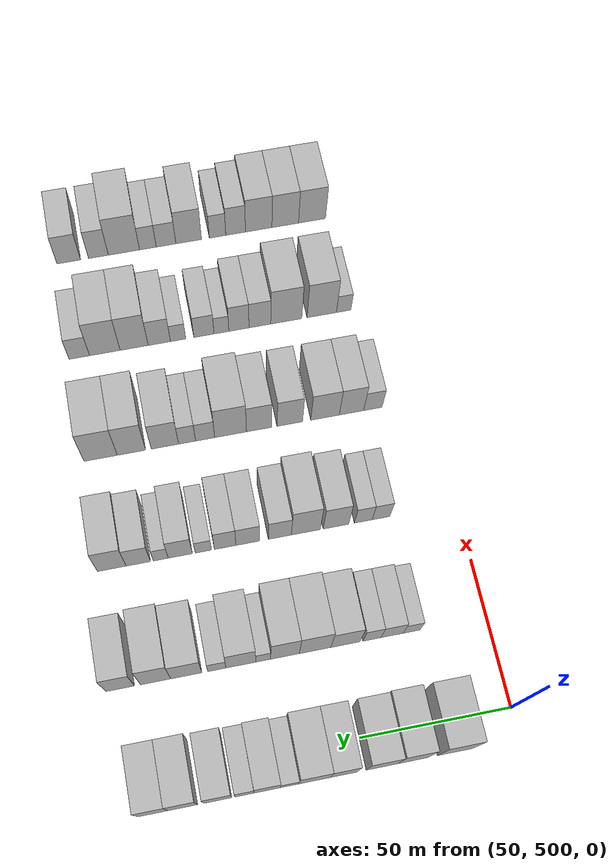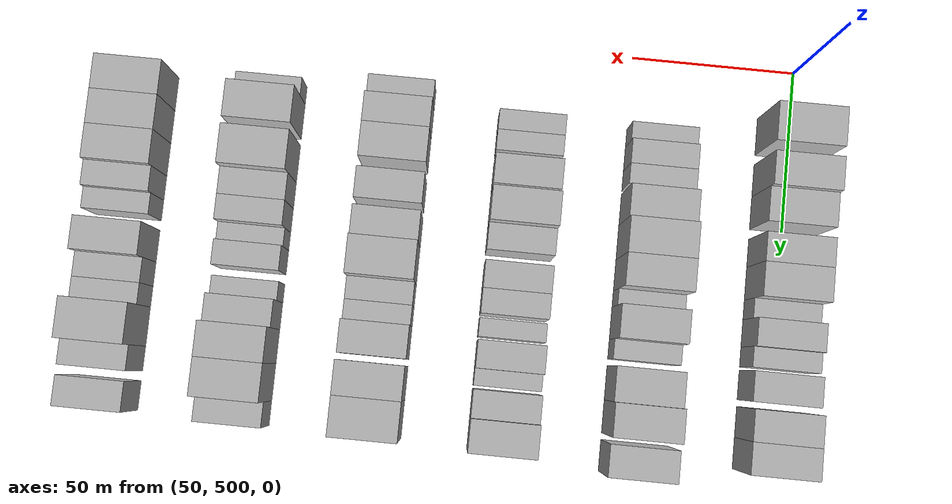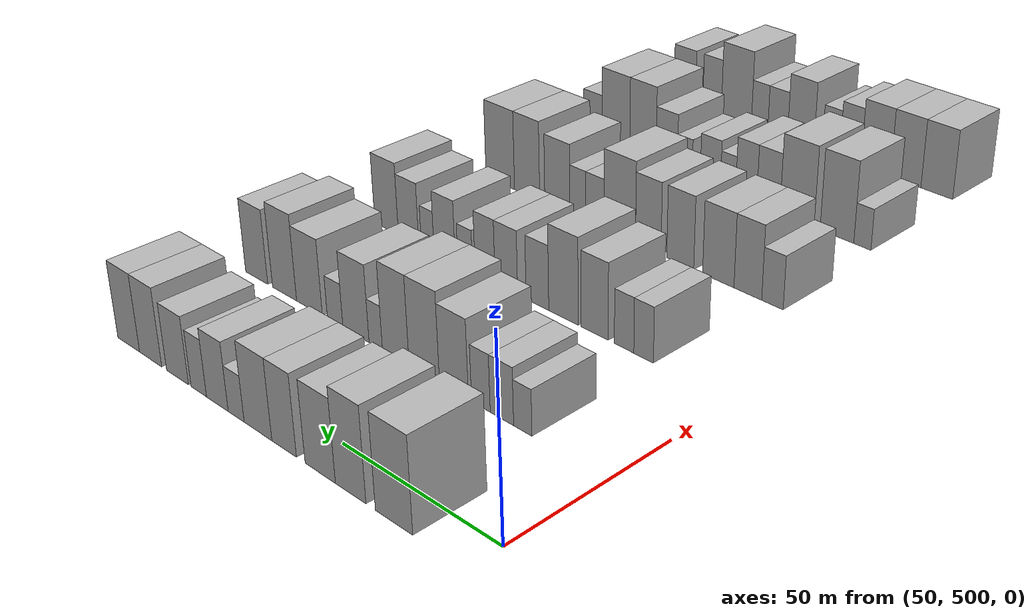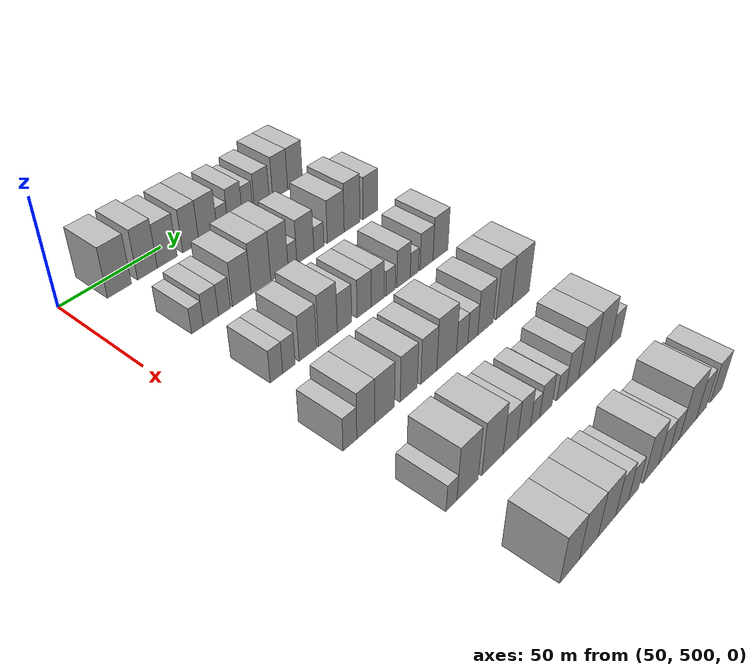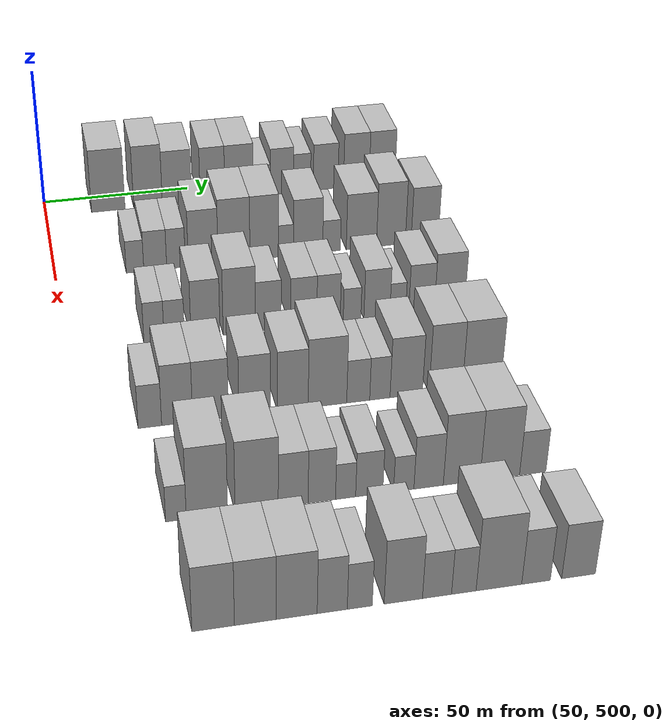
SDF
<sdf version="1.6">
 <world name="default">
  <model name="building_129">
   <static>1</static>
   <pose>50.0000 521.2036 0 0.000000 0.000000 0.000000</pose>
   <link name="link">
    <pose>0 0 12.00 0 0 0</pose>
    <collision name="collision"><geometry><box><size>20.0000 11.5672 24.0000</size></box></geometry></collision>
    <visual name="visual">
     <cast_shadows>0</cast_shadows>
     <geometry><box><size>20.0000 11.5672 24.0000</size></box></geometry>
     <material>
      <script>
       <uri>model://HANNAS_wall/materials/scripts</uri>
       <uri>model://HANNAS_wall/materials/textures</uri>
       <name>vrc/HANNAS_wall</name>
      </script>
     </material>
    </visual>
   </link>
  </model>
  <model name="building_130">
   <static>1</static>
   <pose>50.0000 534.9674 0 0.000000 0.000000 0.000000</pose>
   <link name="link">
    <pose>0 0 12.00 0 0 0</pose>
    <collision name="collision"><geometry><box><size>20.0000 9.9604 24.0000</size></box></geometry></collision>
    <visual name="visual">
     <cast_shadows>0</cast_shadows>
     <geometry><box><size>20.0000 9.9604 24.0000</size></box></geometry>
     <material>
      <script>
       <uri>model://HANNAS_wall/materials/scripts</uri>
       <uri>model://HANNAS_wall/materials/textures</uri>
       <name>vrc/HANNAS_wall</name>
      </script>
     </material>
    </visual>
   </link>
  </model>
  <model name="building_131">
   <static>1</static>
   <pose>50.0000 545.0641 0 0.000000 0.000000 0.000000</pose>
   <link name="link">
    <pose>0 0 10.50 0 0 0</pose>
    <collision name="collision"><geometry><box><size>20.0000 10.2331 21.0000</size></box></geometry></collision>
    <visual name="visual">
     <cast_shadows>0</cast_shadows>
     <geometry><box><size>20.0000 10.2331 21.0000</size></box></geometry>
     <material>
      <script>
       <uri>model://HANNAS_wall/materials/scripts</uri>
       <uri>model://HANNAS_wall/materials/textures</uri>
       <name>vrc/HANNAS_wall</name>
      </script>
     </material>
    </visual>
   </link>
  </model>
  <model name="building_132">
   <static>1</static>
   <pose>50.0000 557.5174 0 0.000000 0.000000 0.000000</pose>
   <link name="link">
    <pose>0 0 10.50 0 0 0</pose>
    <collision name="collision"><geometry><box><size>20.0000 8.6735 21.0000</size></box></geometry></collision>
    <visual name="visual">
     <cast_shadows>0</cast_shadows>
     <geometry><box><size>20.0000 8.6735 21.0000</size></box></geometry>
     <material>
      <script>
       <uri>model://HANNAS_wall/materials/scripts</uri>
       <uri>model://HANNAS_wall/materials/textures</uri>
       <name>vrc/HANNAS_wall</name>
      </script>
     </material>
    </visual>
   </link>
  </model>
  <model name="building_133">
   <static>1</static>
   <pose>50.0000 566.9060 0 0.000000 0.000000 0.000000</pose>
   <link name="link">
    <pose>0 0 10.50 0 0 0</pose>
    <collision name="collision"><geometry><box><size>20.0000 10.1039 21.0000</size></box></geometry></collision>
    <visual name="visual">
     <cast_shadows>0</cast_shadows>
     <geometry><box><size>20.0000 10.1039 21.0000</size></box></geometry>
     <material>
      <script>
       <uri>model://HANNAS_wall/materials/scripts</uri>
       <uri>model://HANNAS_wall/materials/textures</uri>
       <name>vrc/HANNAS_wall</name>
      </script>
     </material>
    </visual>
   </link>
  </model>
  <model name="building_134">
   <static>1</static>
   <pose>50.0000 574.9451 0 0.000000 0.000000 0.000000</pose>
   <link name="link">
    <pose>0 0 6.00 0 0 0</pose>
    <collision name="collision"><geometry><box><size>20.0000 5.9743 12.0000</size></box></geometry></collision>
    <visual name="visual">
     <cast_shadows>0</cast_shadows>
     <geometry><box><size>20.0000 5.9743 12.0000</size></box></geometry>
     <material>
      <script>
       <uri>model://HANNAS_wall/materials/scripts</uri>
       <uri>model://HANNAS_wall/materials/textures</uri>
       <name>vrc/HANNAS_wall</name>
      </script>
     </material>
    </visual>
   </link>
  </model>
  <model name="building_135">
   <static>1</static>
   <pose>50.0000 582.1057 0 0.000000 0.000000 0.000000</pose>
   <link name="link">
    <pose>0 0 9.00 0 0 0</pose>
    <collision name="collision"><geometry><box><size>20.0000 8.3469 18.0000</size></box></geometry></collision>
    <visual name="visual">
     <cast_shadows>0</cast_shadows>
     <geometry><box><size>20.0000 8.3469 18.0000</size></box></geometry>
     <material>
      <script>
       <uri>model://HANNAS_wall/materials/scripts</uri>
       <uri>model://HANNAS_wall/materials/textures</uri>
       <name>vrc/HANNAS_wall</name>
      </script>
     </material>
    </visual>
   </link>
  </model>
  <model name="building_136">
   <static>1</static>
   <pose>50.0000 589.3119 0 0.000000 0.000000 0.000000</pose>
   <link name="link">
    <pose>0 0 7.50 0 0 0</pose>
    <collision name="collision"><geometry><box><size>20.0000 6.0655 15.0000</size></box></geometry></collision>
    <visual name="visual">
     <cast_shadows>0</cast_shadows>
     <geometry><box><size>20.0000 6.0655 15.0000</size></box></geometry>
     <material>
      <script>
       <uri>model://HANNAS_wall/materials/scripts</uri>
       <uri>model://HANNAS_wall/materials/textures</uri>
       <name>vrc/HANNAS_wall</name>
      </script>
     </material>
    </visual>
   </link>
  </model>
  <model name="building_137">
   <static>1</static>
   <pose>50.0000 597.7876 0 0.000000 0.000000 0.000000</pose>
   <link name="link">
    <pose>0 0 9.00 0 0 0</pose>
    <collision name="collision"><geometry><box><size>20.0000 8.8859 18.0000</size></box></geometry></collision>
    <visual name="visual">
     <cast_shadows>0</cast_shadows>
     <geometry><box><size>20.0000 8.8859 18.0000</size></box></geometry>
     <material>
      <script>
       <uri>model://HANNAS_wall/materials/scripts</uri>
       <uri>model://HANNAS_wall/materials/textures</uri>
       <name>vrc/HANNAS_wall</name>
      </script>
     </material>
    </visual>
   </link>
  </model>
  <model name="building_138">
   <static>1</static>
   <pose>50.0000 608.8661 0 0.000000 0.000000 0.000000</pose>
   <link name="link">
    <pose>0 0 10.50 0 0 0</pose>
    <collision name="collision"><geometry><box><size>20.0000 9.2712 21.0000</size></box></geometry></collision>
    <visual name="visual">
     <cast_shadows>0</cast_shadows>
     <geometry><box><size>20.0000 9.2712 21.0000</size></box></geometry>
     <material>
      <script>
       <uri>model://HANNAS_wall/materials/scripts</uri>
       <uri>model://HANNAS_wall/materials/textures</uri>
       <name>vrc/HANNAS_wall</name>
      </script>
     </material>
    </visual>
   </link>
  </model>
  <model name="building_139">
   <static>1</static>
   <pose>50.0000 618.1874 0 0.000000 0.000000 0.000000</pose>
   <link name="link">
    <pose>0 0 10.50 0 0 0</pose>
    <collision name="collision"><geometry><box><size>20.0000 9.3714 21.0000</size></box></geometry></collision>
    <visual name="visual">
     <cast_shadows>0</cast_shadows>
     <geometry><box><size>20.0000 9.3714 21.0000</size></box></geometry>
     <material>
      <script>
       <uri>model://HANNAS_wall/materials/scripts</uri>
       <uri>model://HANNAS_wall/materials/textures</uri>
       <name>vrc/HANNAS_wall</name>
      </script>
     </material>
    </visual>
   </link>
  </model>
  <model name="building_268">
   <static>1</static>
   <pose>90.0000 525.5913 0 0.000000 0.000000 0.000000</pose>
   <link name="link">
    <pose>0 0 6.00 0 0 0</pose>
    <collision name="collision"><geometry><box><size>20.0000 5.7344 12.0000</size></box></geometry></collision>
    <visual name="visual">
     <cast_shadows>0</cast_shadows>
     <geometry><box><size>20.0000 5.7344 12.0000</size></box></geometry>
     <material>
      <script>
       <uri>model://HANNAS_wall/materials/scripts</uri>
       <uri>model://HANNAS_wall/materials/textures</uri>
       <name>vrc/HANNAS_wall</name>
      </script>
     </material>
    </visual>
   </link>
  </model>
  <model name="building_269">
   <static>1</static>
   <pose>90.0000 532.2043 0 0.000000 0.000000 0.000000</pose>
   <link name="link">
    <pose>0 0 7.50 0 0 0</pose>
    <collision name="collision"><geometry><box><size>20.0000 7.4917 15.0000</size></box></geometry></collision>
    <visual name="visual">
     <cast_shadows>0</cast_shadows>
     <geometry><box><size>20.0000 7.4917 15.0000</size></box></geometry>
     <material>
      <script>
       <uri>model://HANNAS_wall/materials/scripts</uri>
       <uri>model://HANNAS_wall/materials/textures</uri>
       <name>vrc/HANNAS_wall</name>
      </script>
     </material>
    </visual>
   </link>
  </model>
  <model name="building_270">
   <static>1</static>
   <pose>90.0000 539.0083 0 0.000000 0.000000 0.000000</pose>
   <link name="link">
    <pose>0 0 7.50 0 0 0</pose>
    <collision name="collision"><geometry><box><size>20.0000 6.1162 15.0000</size></box></geometry></collision>
    <visual name="visual">
     <cast_shadows>0</cast_shadows>
     <geometry><box><size>20.0000 6.1162 15.0000</size></box></geometry>
     <material>
      <script>
       <uri>model://HANNAS_wall/materials/scripts</uri>
       <uri>model://HANNAS_wall/materials/textures</uri>
       <name>vrc/HANNAS_wall</name>
      </script>
     </material>
    </visual>
   </link>
  </model>
  <model name="building_271">
   <static>1</static>
   <pose>90.0000 547.9671 0 0.000000 0.000000 0.000000</pose>
   <link name="link">
    <pose>0 0 10.50 0 0 0</pose>
    <collision name="collision"><geometry><box><size>20.0000 9.8012 21.0000</size></box></geometry></collision>
    <visual name="visual">
     <cast_shadows>0</cast_shadows>
     <geometry><box><size>20.0000 9.8012 21.0000</size></box></geometry>
     <material>
      <script>
       <uri>model://HANNAS_wall/materials/scripts</uri>
       <uri>model://HANNAS_wall/materials/textures</uri>
       <name>vrc/HANNAS_wall</name>
      </script>
     </material>
    </visual>
   </link>
  </model>
  <model name="building_272">
   <static>1</static>
   <pose>90.0000 558.1657 0 0.000000 0.000000 0.000000</pose>
   <link name="link">
    <pose>0 0 12.00 0 0 0</pose>
    <collision name="collision"><geometry><box><size>20.0000 10.5960 24.0000</size></box></geometry></collision>
    <visual name="visual">
     <cast_shadows>0</cast_shadows>
     <geometry><box><size>20.0000 10.5960 24.0000</size></box></geometry>
     <material>
      <script>
       <uri>model://HANNAS_wall/materials/scripts</uri>
       <uri>model://HANNAS_wall/materials/textures</uri>
       <name>vrc/HANNAS_wall</name>
      </script>
     </material>
    </visual>
   </link>
  </model>
  <model name="building_273">
   <static>1</static>
   <pose>90.0000 568.2744 0 0.000000 0.000000 0.000000</pose>
   <link name="link">
    <pose>0 0 12.00 0 0 0</pose>
    <collision name="collision"><geometry><box><size>20.0000 9.6215 24.0000</size></box></geometry></collision>
    <visual name="visual">
     <cast_shadows>0</cast_shadows>
     <geometry><box><size>20.0000 9.6215 24.0000</size></box></geometry>
     <material>
      <script>
       <uri>model://HANNAS_wall/materials/scripts</uri>
       <uri>model://HANNAS_wall/materials/textures</uri>
       <name>vrc/HANNAS_wall</name>
      </script>
     </material>
    </visual>
   </link>
  </model>
  <model name="building_274">
   <static>1</static>
   <pose>90.0000 575.5518 0 0.000000 0.000000 0.000000</pose>
   <link name="link">
    <pose>0 0 6.00 0 0 0</pose>
    <collision name="collision"><geometry><box><size>20.0000 4.9334 12.0000</size></box></geometry></collision>
    <visual name="visual">
     <cast_shadows>0</cast_shadows>
     <geometry><box><size>20.0000 4.9334 12.0000</size></box></geometry>
     <material>
      <script>
       <uri>model://HANNAS_wall/materials/scripts</uri>
       <uri>model://HANNAS_wall/materials/textures</uri>
       <name>vrc/HANNAS_wall</name>
      </script>
     </material>
    </visual>
   </link>
  </model>
  <model name="building_275">
   <static>1</static>
   <pose>90.0000 582.9483 0 0.000000 0.000000 0.000000</pose>
   <link name="link">
    <pose>0 0 10.50 0 0 0</pose>
    <collision name="collision"><geometry><box><size>20.0000 9.8595 21.0000</size></box></geometry></collision>
    <visual name="visual">
     <cast_shadows>0</cast_shadows>
     <geometry><box><size>20.0000 9.8595 21.0000</size></box></geometry>
     <material>
      <script>
       <uri>model://HANNAS_wall/materials/scripts</uri>
       <uri>model://HANNAS_wall/materials/textures</uri>
       <name>vrc/HANNAS_wall</name>
      </script>
     </material>
    </visual>
   </link>
  </model>
  <model name="building_276">
   <static>1</static>
   <pose>90.0000 590.8747 0 0.000000 0.000000 0.000000</pose>
   <link name="link">
    <pose>0 0 6.00 0 0 0</pose>
    <collision name="collision"><geometry><box><size>20.0000 5.9932 12.0000</size></box></geometry></collision>
    <visual name="visual">
     <cast_shadows>0</cast_shadows>
     <geometry><box><size>20.0000 5.9932 12.0000</size></box></geometry>
     <material>
      <script>
       <uri>model://HANNAS_wall/materials/scripts</uri>
       <uri>model://HANNAS_wall/materials/textures</uri>
       <name>vrc/HANNAS_wall</name>
      </script>
     </material>
    </visual>
   </link>
  </model>
  <model name="building_277">
   <static>1</static>
   <pose>90.0000 601.0182 0 0.000000 0.000000 0.000000</pose>
   <link name="link">
    <pose>0 0 10.50 0 0 0</pose>
    <collision name="collision"><geometry><box><size>20.0000 10.2938 21.0000</size></box></geometry></collision>
    <visual name="visual">
     <cast_shadows>0</cast_shadows>
     <geometry><box><size>20.0000 10.2938 21.0000</size></box></geometry>
     <material>
      <script>
       <uri>model://HANNAS_wall/materials/scripts</uri>
       <uri>model://HANNAS_wall/materials/textures</uri>
       <name>vrc/HANNAS_wall</name>
      </script>
     </material>
    </visual>
   </link>
  </model>
  <model name="building_278">
   <static>1</static>
   <pose>90.0000 611.1106 0 0.000000 0.000000 0.000000</pose>
   <link name="link">
    <pose>0 0 12.00 0 0 0</pose>
    <collision name="collision"><geometry><box><size>20.0000 9.8910 24.0000</size></box></geometry></collision>
    <visual name="visual">
     <cast_shadows>0</cast_shadows>
     <geometry><box><size>20.0000 9.8910 24.0000</size></box></geometry>
     <material>
      <script>
       <uri>model://HANNAS_wall/materials/scripts</uri>
       <uri>model://HANNAS_wall/materials/textures</uri>
       <name>vrc/HANNAS_wall</name>
      </script>
     </material>
    </visual>
   </link>
  </model>
  <model name="building_279">
   <static>1</static>
   <pose>90.0000 622.7506 0 0.000000 0.000000 0.000000</pose>
   <link name="link">
    <pose>0 0 10.50 0 0 0</pose>
    <collision name="collision"><geometry><box><size>20.0000 9.3891 21.0000</size></box></geometry></collision>
    <visual name="visual">
     <cast_shadows>0</cast_shadows>
     <geometry><box><size>20.0000 9.3891 21.0000</size></box></geometry>
     <material>
      <script>
       <uri>model://HANNAS_wall/materials/scripts</uri>
       <uri>model://HANNAS_wall/materials/textures</uri>
       <name>vrc/HANNAS_wall</name>
      </script>
     </material>
    </visual>
   </link>
  </model>
  <model name="building_404">
   <static>1</static>
   <pose>130.0000 526.5727 0 0.000000 0.000000 0.000000</pose>
   <link name="link">
    <pose>0 0 7.50 0 0 0</pose>
    <collision name="collision"><geometry><box><size>20.0000 6.1857 15.0000</size></box></geometry></collision>
    <visual name="visual">
     <cast_shadows>0</cast_shadows>
     <geometry><box><size>20.0000 6.1857 15.0000</size></box></geometry>
     <material>
      <script>
       <uri>model://HANNAS_wall/materials/scripts</uri>
       <uri>model://HANNAS_wall/materials/textures</uri>
       <name>vrc/HANNAS_wall</name>
      </script>
     </material>
    </visual>
   </link>
  </model>
  <model name="building_405">
   <static>1</static>
   <pose>130.0000 532.7899 0 0.000000 0.000000 0.000000</pose>
   <link name="link">
    <pose>0 0 7.50 0 0 0</pose>
    <collision name="collision"><geometry><box><size>20.0000 6.2488 15.0000</size></box></geometry></collision>
    <visual name="visual">
     <cast_shadows>0</cast_shadows>
     <geometry><box><size>20.0000 6.2488 15.0000</size></box></geometry>
     <material>
      <script>
       <uri>model://HANNAS_wall/materials/scripts</uri>
       <uri>model://HANNAS_wall/materials/textures</uri>
       <name>vrc/HANNAS_wall</name>
      </script>
     </material>
    </visual>
   </link>
  </model>
  <model name="building_406">
   <static>1</static>
   <pose>130.0000 542.3907 0 0.000000 0.000000 0.000000</pose>
   <link name="link">
    <pose>0 0 10.50 0 0 0</pose>
    <collision name="collision"><geometry><box><size>20.0000 8.9526 21.0000</size></box></geometry></collision>
    <visual name="visual">
     <cast_shadows>0</cast_shadows>
     <geometry><box><size>20.0000 8.9526 21.0000</size></box></geometry>
     <material>
      <script>
       <uri>model://HANNAS_wall/materials/scripts</uri>
       <uri>model://HANNAS_wall/materials/textures</uri>
       <name>vrc/HANNAS_wall</name>
      </script>
     </material>
    </visual>
   </link>
  </model>
  <model name="building_407">
   <static>1</static>
   <pose>130.0000 552.9104 0 0.000000 0.000000 0.000000</pose>
   <link name="link">
    <pose>0 0 12.00 0 0 0</pose>
    <collision name="collision"><geometry><box><size>20.0000 10.0869 24.0000</size></box></geometry></collision>
    <visual name="visual">
     <cast_shadows>0</cast_shadows>
     <geometry><box><size>20.0000 10.0869 24.0000</size></box></geometry>
     <material>
      <script>
       <uri>model://HANNAS_wall/materials/scripts</uri>
       <uri>model://HANNAS_wall/materials/textures</uri>
       <name>vrc/HANNAS_wall</name>
      </script>
     </material>
    </visual>
   </link>
  </model>
  <model name="building_408">
   <static>1</static>
   <pose>130.0000 561.9442 0 0.000000 0.000000 0.000000</pose>
   <link name="link">
    <pose>0 0 9.00 0 0 0</pose>
    <collision name="collision"><geometry><box><size>20.0000 7.9806 18.0000</size></box></geometry></collision>
    <visual name="visual">
     <cast_shadows>0</cast_shadows>
     <geometry><box><size>20.0000 7.9806 18.0000</size></box></geometry>
     <material>
      <script>
       <uri>model://HANNAS_wall/materials/scripts</uri>
       <uri>model://HANNAS_wall/materials/textures</uri>
       <name>vrc/HANNAS_wall</name>
      </script>
     </material>
    </visual>
   </link>
  </model>
  <model name="building_409">
   <static>1</static>
   <pose>130.0000 573.0417 0 0.000000 0.000000 0.000000</pose>
   <link name="link">
    <pose>0 0 9.00 0 0 0</pose>
    <collision name="collision"><geometry><box><size>20.0000 8.2143 18.0000</size></box></geometry></collision>
    <visual name="visual">
     <cast_shadows>0</cast_shadows>
     <geometry><box><size>20.0000 8.2143 18.0000</size></box></geometry>
     <material>
      <script>
       <uri>model://HANNAS_wall/materials/scripts</uri>
       <uri>model://HANNAS_wall/materials/textures</uri>
       <name>vrc/HANNAS_wall</name>
      </script>
     </material>
    </visual>
   </link>
  </model>
  <model name="building_410">
   <static>1</static>
   <pose>130.0000 580.8591 0 0.000000 0.000000 0.000000</pose>
   <link name="link">
    <pose>0 0 9.00 0 0 0</pose>
    <collision name="collision"><geometry><box><size>20.0000 7.4205 18.0000</size></box></geometry></collision>
    <visual name="visual">
     <cast_shadows>0</cast_shadows>
     <geometry><box><size>20.0000 7.4205 18.0000</size></box></geometry>
     <material>
      <script>
       <uri>model://HANNAS_wall/materials/scripts</uri>
       <uri>model://HANNAS_wall/materials/textures</uri>
       <name>vrc/HANNAS_wall</name>
      </script>
     </material>
    </visual>
   </link>
  </model>
  <model name="building_411">
   <static>1</static>
   <pose>130.0000 588.3589 0 0.000000 0.000000 0.000000</pose>
   <link name="link">
    <pose>0 0 6.00 0 0 0</pose>
    <collision name="collision"><geometry><box><size>20.0000 5.5790 12.0000</size></box></geometry></collision>
    <visual name="visual">
     <cast_shadows>0</cast_shadows>
     <geometry><box><size>20.0000 5.5790 12.0000</size></box></geometry>
     <material>
      <script>
       <uri>model://HANNAS_wall/materials/scripts</uri>
       <uri>model://HANNAS_wall/materials/textures</uri>
       <name>vrc/HANNAS_wall</name>
      </script>
     </material>
    </visual>
   </link>
  </model>
  <model name="building_412">
   <static>1</static>
   <pose>130.0000 596.2963 0 0.000000 0.000000 0.000000</pose>
   <link name="link">
    <pose>0 0 9.00 0 0 0</pose>
    <collision name="collision"><geometry><box><size>20.0000 8.2958 18.0000</size></box></geometry></collision>
    <visual name="visual">
     <cast_shadows>0</cast_shadows>
     <geometry><box><size>20.0000 8.2958 18.0000</size></box></geometry>
     <material>
      <script>
       <uri>model://HANNAS_wall/materials/scripts</uri>
       <uri>model://HANNAS_wall/materials/textures</uri>
       <name>vrc/HANNAS_wall</name>
      </script>
     </material>
    </visual>
   </link>
  </model>
  <model name="building_413">
   <static>1</static>
   <pose>130.0000 602.9728 0 0.000000 0.000000 0.000000</pose>
   <link name="link">
    <pose>0 0 6.00 0 0 0</pose>
    <collision name="collision"><geometry><box><size>20.0000 5.0571 12.0000</size></box></geometry></collision>
    <visual name="visual">
     <cast_shadows>0</cast_shadows>
     <geometry><box><size>20.0000 5.0571 12.0000</size></box></geometry>
     <material>
      <script>
       <uri>model://HANNAS_wall/materials/scripts</uri>
       <uri>model://HANNAS_wall/materials/textures</uri>
       <name>vrc/HANNAS_wall</name>
      </script>
     </material>
    </visual>
   </link>
  </model>
  <model name="building_414">
   <static>1</static>
   <pose>130.0000 610.6504 0 0.000000 0.000000 0.000000</pose>
   <link name="link">
    <pose>0 0 9.00 0 0 0</pose>
    <collision name="collision"><geometry><box><size>20.0000 8.2983 18.0000</size></box></geometry></collision>
    <visual name="visual">
     <cast_shadows>0</cast_shadows>
     <geometry><box><size>20.0000 8.2983 18.0000</size></box></geometry>
     <material>
      <script>
       <uri>model://HANNAS_wall/materials/scripts</uri>
       <uri>model://HANNAS_wall/materials/textures</uri>
       <name>vrc/HANNAS_wall</name>
      </script>
     </material>
    </visual>
   </link>
  </model>
  <model name="building_415">
   <static>1</static>
   <pose>130.0000 619.6903 0 0.000000 0.000000 0.000000</pose>
   <link name="link">
    <pose>0 0 10.50 0 0 0</pose>
    <collision name="collision"><geometry><box><size>20.0000 9.7814 21.0000</size></box></geometry></collision>
    <visual name="visual">
     <cast_shadows>0</cast_shadows>
     <geometry><box><size>20.0000 9.7814 21.0000</size></box></geometry>
     <material>
      <script>
       <uri>model://HANNAS_wall/materials/scripts</uri>
       <uri>model://HANNAS_wall/materials/textures</uri>
       <name>vrc/HANNAS_wall</name>
      </script>
     </material>
    </visual>
   </link>
  </model>
  <model name="building_545">
   <static>1</static>
   <pose>170.0000 520.1416 0 0.000000 0.000000 0.000000</pose>
   <link name="link">
    <pose>0 0 7.50 0 0 0</pose>
    <collision name="collision"><geometry><box><size>20.0000 6.7142 15.0000</size></box></geometry></collision>
    <visual name="visual">
     <cast_shadows>0</cast_shadows>
     <geometry><box><size>20.0000 6.7142 15.0000</size></box></geometry>
     <material>
      <script>
       <uri>model://HANNAS_wall/materials/scripts</uri>
       <uri>model://HANNAS_wall/materials/textures</uri>
       <name>vrc/HANNAS_wall</name>
      </script>
     </material>
    </visual>
   </link>
  </model>
  <model name="building_546">
   <static>1</static>
   <pose>170.0000 527.9371 0 0.000000 0.000000 0.000000</pose>
   <link name="link">
    <pose>0 0 10.50 0 0 0</pose>
    <collision name="collision"><geometry><box><size>20.0000 8.8769 21.0000</size></box></geometry></collision>
    <visual name="visual">
     <cast_shadows>0</cast_shadows>
     <geometry><box><size>20.0000 8.8769 21.0000</size></box></geometry>
     <material>
      <script>
       <uri>model://HANNAS_wall/materials/scripts</uri>
       <uri>model://HANNAS_wall/materials/textures</uri>
       <name>vrc/HANNAS_wall</name>
      </script>
     </material>
    </visual>
   </link>
  </model>
  <model name="building_547">
   <static>1</static>
   <pose>170.0000 537.5436 0 0.000000 0.000000 0.000000</pose>
   <link name="link">
    <pose>0 0 10.50 0 0 0</pose>
    <collision name="collision"><geometry><box><size>20.0000 10.3360 21.0000</size></box></geometry></collision>
    <visual name="visual">
     <cast_shadows>0</cast_shadows>
     <geometry><box><size>20.0000 10.3360 21.0000</size></box></geometry>
     <material>
      <script>
       <uri>model://HANNAS_wall/materials/scripts</uri>
       <uri>model://HANNAS_wall/materials/textures</uri>
       <name>vrc/HANNAS_wall</name>
      </script>
     </material>
    </visual>
   </link>
  </model>
  <model name="building_548">
   <static>1</static>
   <pose>170.0000 550.3249 0 0.000000 0.000000 0.000000</pose>
   <link name="link">
    <pose>0 0 10.50 0 0 0</pose>
    <collision name="collision"><geometry><box><size>20.0000 9.2267 21.0000</size></box></geometry></collision>
    <visual name="visual">
     <cast_shadows>0</cast_shadows>
     <geometry><box><size>20.0000 9.2267 21.0000</size></box></geometry>
     <material>
      <script>
       <uri>model://HANNAS_wall/materials/scripts</uri>
       <uri>model://HANNAS_wall/materials/textures</uri>
       <name>vrc/HANNAS_wall</name>
      </script>
     </material>
    </visual>
   </link>
  </model>
  <model name="building_549">
   <static>1</static>
   <pose>170.0000 561.4341 0 0.000000 0.000000 0.000000</pose>
   <link name="link">
    <pose>0 0 10.50 0 0 0</pose>
    <collision name="collision"><geometry><box><size>20.0000 8.9917 21.0000</size></box></geometry></collision>
    <visual name="visual">
     <cast_shadows>0</cast_shadows>
     <geometry><box><size>20.0000 8.9917 21.0000</size></box></geometry>
     <material>
      <script>
       <uri>model://HANNAS_wall/materials/scripts</uri>
       <uri>model://HANNAS_wall/materials/textures</uri>
       <name>vrc/HANNAS_wall</name>
      </script>
     </material>
    </visual>
   </link>
  </model>
  <model name="building_550">
   <static>1</static>
   <pose>170.0000 571.6153 0 0.000000 0.000000 0.000000</pose>
   <link name="link">
    <pose>0 0 12.00 0 0 0</pose>
    <collision name="collision"><geometry><box><size>20.0000 11.3708 24.0000</size></box></geometry></collision>
    <visual name="visual">
     <cast_shadows>0</cast_shadows>
     <geometry><box><size>20.0000 11.3708 24.0000</size></box></geometry>
     <material>
      <script>
       <uri>model://HANNAS_wall/materials/scripts</uri>
       <uri>model://HANNAS_wall/materials/textures</uri>
       <name>vrc/HANNAS_wall</name>
      </script>
     </material>
    </visual>
   </link>
  </model>
  <model name="building_551">
   <static>1</static>
   <pose>170.0000 580.7177 0 0.000000 0.000000 0.000000</pose>
   <link name="link">
    <pose>0 0 7.50 0 0 0</pose>
    <collision name="collision"><geometry><box><size>20.0000 6.8340 15.0000</size></box></geometry></collision>
    <visual name="visual">
     <cast_shadows>0</cast_shadows>
     <geometry><box><size>20.0000 6.8340 15.0000</size></box></geometry>
     <material>
      <script>
       <uri>model://HANNAS_wall/materials/scripts</uri>
       <uri>model://HANNAS_wall/materials/textures</uri>
       <name>vrc/HANNAS_wall</name>
      </script>
     </material>
    </visual>
   </link>
  </model>
  <model name="building_552">
   <static>1</static>
   <pose>170.0000 587.1640 0 0.000000 0.000000 0.000000</pose>
   <link name="link">
    <pose>0 0 7.50 0 0 0</pose>
    <collision name="collision"><geometry><box><size>20.0000 6.0586 15.0000</size></box></geometry></collision>
    <visual name="visual">
     <cast_shadows>0</cast_shadows>
     <geometry><box><size>20.0000 6.0586 15.0000</size></box></geometry>
     <material>
      <script>
       <uri>model://HANNAS_wall/materials/scripts</uri>
       <uri>model://HANNAS_wall/materials/textures</uri>
       <name>vrc/HANNAS_wall</name>
      </script>
     </material>
    </visual>
   </link>
  </model>
  <model name="building_553">
   <static>1</static>
   <pose>170.0000 595.0485 0 0.000000 0.000000 0.000000</pose>
   <link name="link">
    <pose>0 0 10.50 0 0 0</pose>
    <collision name="collision"><geometry><box><size>20.0000 9.7104 21.0000</size></box></geometry></collision>
    <visual name="visual">
     <cast_shadows>0</cast_shadows>
     <geometry><box><size>20.0000 9.7104 21.0000</size></box></geometry>
     <material>
      <script>
       <uri>model://HANNAS_wall/materials/scripts</uri>
       <uri>model://HANNAS_wall/materials/textures</uri>
       <name>vrc/HANNAS_wall</name>
      </script>
     </material>
    </visual>
   </link>
  </model>
  <model name="building_554">
   <static>1</static>
   <pose>170.0000 606.9461 0 0.000000 0.000000 0.000000</pose>
   <link name="link">
    <pose>0 0 12.00 0 0 0</pose>
    <collision name="collision"><geometry><box><size>20.0000 10.0848 24.0000</size></box></geometry></collision>
    <visual name="visual">
     <cast_shadows>0</cast_shadows>
     <geometry><box><size>20.0000 10.0848 24.0000</size></box></geometry>
     <material>
      <script>
       <uri>model://HANNAS_wall/materials/scripts</uri>
       <uri>model://HANNAS_wall/materials/textures</uri>
       <name>vrc/HANNAS_wall</name>
      </script>
     </material>
    </visual>
   </link>
  </model>
  <model name="building_555">
   <static>1</static>
   <pose>170.0000 617.8539 0 0.000000 0.000000 0.000000</pose>
   <link name="link">
    <pose>0 0 12.00 0 0 0</pose>
    <collision name="collision"><geometry><box><size>20.0000 11.7309 24.0000</size></box></geometry></collision>
    <visual name="visual">
     <cast_shadows>0</cast_shadows>
     <geometry><box><size>20.0000 11.7309 24.0000</size></box></geometry>
     <material>
      <script>
       <uri>model://HANNAS_wall/materials/scripts</uri>
       <uri>model://HANNAS_wall/materials/textures</uri>
       <name>vrc/HANNAS_wall</name>
      </script>
     </material>
    </visual>
   </link>
  </model>
  <model name="building_677">
   <static>1</static>
   <pose>210.0000 521.8812 0 0.000000 0.000000 0.000000</pose>
   <link name="link">
    <pose>0 0 6.00 0 0 0</pose>
    <collision name="collision"><geometry><box><size>20.0000 5.4855 12.0000</size></box></geometry></collision>
    <visual name="visual">
     <cast_shadows>0</cast_shadows>
     <geometry><box><size>20.0000 5.4855 12.0000</size></box></geometry>
     <material>
      <script>
       <uri>model://HANNAS_wall/materials/scripts</uri>
       <uri>model://HANNAS_wall/materials/textures</uri>
       <name>vrc/HANNAS_wall</name>
      </script>
     </material>
    </visual>
   </link>
  </model>
  <model name="building_678">
   <static>1</static>
   <pose>210.0000 530.1395 0 0.000000 0.000000 0.000000</pose>
   <link name="link">
    <pose>0 0 12.00 0 0 0</pose>
    <collision name="collision"><geometry><box><size>20.0000 11.0311 24.0000</size></box></geometry></collision>
    <visual name="visual">
     <cast_shadows>0</cast_shadows>
     <geometry><box><size>20.0000 11.0311 24.0000</size></box></geometry>
     <material>
      <script>
       <uri>model://HANNAS_wall/materials/scripts</uri>
       <uri>model://HANNAS_wall/materials/textures</uri>
       <name>vrc/HANNAS_wall</name>
      </script>
     </material>
    </visual>
   </link>
  </model>
  <model name="building_679">
   <static>1</static>
   <pose>210.0000 543.4630 0 0.000000 0.000000 0.000000</pose>
   <link name="link">
    <pose>0 0 12.00 0 0 0</pose>
    <collision name="collision"><geometry><box><size>20.0000 11.6160 24.0000</size></box></geometry></collision>
    <visual name="visual">
     <cast_shadows>0</cast_shadows>
     <geometry><box><size>20.0000 11.6160 24.0000</size></box></geometry>
     <material>
      <script>
       <uri>model://HANNAS_wall/materials/scripts</uri>
       <uri>model://HANNAS_wall/materials/textures</uri>
       <name>vrc/HANNAS_wall</name>
      </script>
     </material>
    </visual>
   </link>
  </model>
  <model name="building_680">
   <static>1</static>
   <pose>210.0000 553.3253 0 0.000000 0.000000 0.000000</pose>
   <link name="link">
    <pose>0 0 9.00 0 0 0</pose>
    <collision name="collision"><geometry><box><size>20.0000 8.1086 18.0000</size></box></geometry></collision>
    <visual name="visual">
     <cast_shadows>0</cast_shadows>
     <geometry><box><size>20.0000 8.1086 18.0000</size></box></geometry>
     <material>
      <script>
       <uri>model://HANNAS_wall/materials/scripts</uri>
       <uri>model://HANNAS_wall/materials/textures</uri>
       <name>vrc/HANNAS_wall</name>
      </script>
     </material>
    </visual>
   </link>
  </model>
  <model name="building_681">
   <static>1</static>
   <pose>210.0000 561.1262 0 0.000000 0.000000 0.000000</pose>
   <link name="link">
    <pose>0 0 9.00 0 0 0</pose>
    <collision name="collision"><geometry><box><size>20.0000 7.4932 18.0000</size></box></geometry></collision>
    <visual name="visual">
     <cast_shadows>0</cast_shadows>
     <geometry><box><size>20.0000 7.4932 18.0000</size></box></geometry>
     <material>
      <script>
       <uri>model://HANNAS_wall/materials/scripts</uri>
       <uri>model://HANNAS_wall/materials/textures</uri>
       <name>vrc/HANNAS_wall</name>
      </script>
     </material>
    </visual>
   </link>
  </model>
  <model name="building_682">
   <static>1</static>
   <pose>210.0000 567.6317 0 0.000000 0.000000 0.000000</pose>
   <link name="link">
    <pose>0 0 6.00 0 0 0</pose>
    <collision name="collision"><geometry><box><size>20.0000 5.5178 12.0000</size></box></geometry></collision>
    <visual name="visual">
     <cast_shadows>0</cast_shadows>
     <geometry><box><size>20.0000 5.5178 12.0000</size></box></geometry>
     <material>
      <script>
       <uri>model://HANNAS_wall/materials/scripts</uri>
       <uri>model://HANNAS_wall/materials/textures</uri>
       <name>vrc/HANNAS_wall</name>
      </script>
     </material>
    </visual>
   </link>
  </model>
  <model name="building_683">
   <static>1</static>
   <pose>210.0000 574.1308 0 0.000000 0.000000 0.000000</pose>
   <link name="link">
    <pose>0 0 7.50 0 0 0</pose>
    <collision name="collision"><geometry><box><size>20.0000 7.4805 15.0000</size></box></geometry></collision>
    <visual name="visual">
     <cast_shadows>0</cast_shadows>
     <geometry><box><size>20.0000 7.4805 15.0000</size></box></geometry>
     <material>
      <script>
       <uri>model://HANNAS_wall/materials/scripts</uri>
       <uri>model://HANNAS_wall/materials/textures</uri>
       <name>vrc/HANNAS_wall</name>
      </script>
     </material>
    </visual>
   </link>
  </model>
  <model name="building_684">
   <static>1</static>
   <pose>210.0000 583.6903 0 0.000000 0.000000 0.000000</pose>
   <link name="link">
    <pose>0 0 6.00 0 0 0</pose>
    <collision name="collision"><geometry><box><size>20.0000 5.6385 12.0000</size></box></geometry></collision>
    <visual name="visual">
     <cast_shadows>0</cast_shadows>
     <geometry><box><size>20.0000 5.6385 12.0000</size></box></geometry>
     <material>
      <script>
       <uri>model://HANNAS_wall/materials/scripts</uri>
       <uri>model://HANNAS_wall/materials/textures</uri>
       <name>vrc/HANNAS_wall</name>
      </script>
     </material>
    </visual>
   </link>
  </model>
  <model name="building_685">
   <static>1</static>
   <pose>210.0000 590.6130 0 0.000000 0.000000 0.000000</pose>
   <link name="link">
    <pose>0 0 9.00 0 0 0</pose>
    <collision name="collision"><geometry><box><size>20.0000 8.2069 18.0000</size></box></geometry></collision>
    <visual name="visual">
     <cast_shadows>0</cast_shadows>
     <geometry><box><size>20.0000 8.2069 18.0000</size></box></geometry>
     <material>
      <script>
       <uri>model://HANNAS_wall/materials/scripts</uri>
       <uri>model://HANNAS_wall/materials/textures</uri>
       <name>vrc/HANNAS_wall</name>
      </script>
     </material>
    </visual>
   </link>
  </model>
  <model name="building_686">
   <static>1</static>
   <pose>210.0000 599.8714 0 0.000000 0.000000 0.000000</pose>
   <link name="link">
    <pose>0 0 12.00 0 0 0</pose>
    <collision name="collision"><geometry><box><size>20.0000 10.3098 24.0000</size></box></geometry></collision>
    <visual name="visual">
     <cast_shadows>0</cast_shadows>
     <geometry><box><size>20.0000 10.3098 24.0000</size></box></geometry>
     <material>
      <script>
       <uri>model://HANNAS_wall/materials/scripts</uri>
       <uri>model://HANNAS_wall/materials/textures</uri>
       <name>vrc/HANNAS_wall</name>
      </script>
     </material>
    </visual>
   </link>
  </model>
  <model name="building_687">
   <static>1</static>
   <pose>210.0000 610.6344 0 0.000000 0.000000 0.000000</pose>
   <link name="link">
    <pose>0 0 12.00 0 0 0</pose>
    <collision name="collision"><geometry><box><size>20.0000 11.2163 24.0000</size></box></geometry></collision>
    <visual name="visual">
     <cast_shadows>0</cast_shadows>
     <geometry><box><size>20.0000 11.2163 24.0000</size></box></geometry>
     <material>
      <script>
       <uri>model://HANNAS_wall/materials/scripts</uri>
       <uri>model://HANNAS_wall/materials/textures</uri>
       <name>vrc/HANNAS_wall</name>
      </script>
     </material>
    </visual>
   </link>
  </model>
  <model name="building_688">
   <static>1</static>
   <pose>210.0000 619.9908 0 0.000000 0.000000 0.000000</pose>
   <link name="link">
    <pose>0 0 7.50 0 0 0</pose>
    <collision name="collision"><geometry><box><size>20.0000 7.4966 15.0000</size></box></geometry></collision>
    <visual name="visual">
     <cast_shadows>0</cast_shadows>
     <geometry><box><size>20.0000 7.4966 15.0000</size></box></geometry>
     <material>
      <script>
       <uri>model://HANNAS_wall/materials/scripts</uri>
       <uri>model://HANNAS_wall/materials/textures</uri>
       <name>vrc/HANNAS_wall</name>
      </script>
     </material>
    </visual>
   </link>
  </model>
  <model name="building_817">
   <static>1</static>
   <pose>250.0000 525.3010 0 0.000000 0.000000 0.000000</pose>
   <link name="link">
    <pose>0 0 10.50 0 0 0</pose>
    <collision name="collision"><geometry><box><size>20.0000 10.4677 21.0000</size></box></geometry></collision>
    <visual name="visual">
     <cast_shadows>0</cast_shadows>
     <geometry><box><size>20.0000 10.4677 21.0000</size></box></geometry>
     <material>
      <script>
       <uri>model://HANNAS_wall/materials/scripts</uri>
       <uri>model://HANNAS_wall/materials/textures</uri>
       <name>vrc/HANNAS_wall</name>
      </script>
     </material>
    </visual>
   </link>
  </model>
  <model name="building_818">
   <static>1</static>
   <pose>250.0000 535.7160 0 0.000000 0.000000 0.000000</pose>
   <link name="link">
    <pose>0 0 10.50 0 0 0</pose>
    <collision name="collision"><geometry><box><size>20.0000 10.3623 21.0000</size></box></geometry></collision>
    <visual name="visual">
     <cast_shadows>0</cast_shadows>
     <geometry><box><size>20.0000 10.3623 21.0000</size></box></geometry>
     <material>
      <script>
       <uri>model://HANNAS_wall/materials/scripts</uri>
       <uri>model://HANNAS_wall/materials/textures</uri>
       <name>vrc/HANNAS_wall</name>
      </script>
     </material>
    </visual>
   </link>
  </model>
  <model name="building_819">
   <static>1</static>
   <pose>250.0000 546.0147 0 0.000000 0.000000 0.000000</pose>
   <link name="link">
    <pose>0 0 10.50 0 0 0</pose>
    <collision name="collision"><geometry><box><size>20.0000 10.2351 21.0000</size></box></geometry></collision>
    <visual name="visual">
     <cast_shadows>0</cast_shadows>
     <geometry><box><size>20.0000 10.2351 21.0000</size></box></geometry>
     <material>
      <script>
       <uri>model://HANNAS_wall/materials/scripts</uri>
       <uri>model://HANNAS_wall/materials/textures</uri>
       <name>vrc/HANNAS_wall</name>
      </script>
     </material>
    </visual>
   </link>
  </model>
  <model name="building_820">
   <static>1</static>
   <pose>250.0000 554.9208 0 0.000000 0.000000 0.000000</pose>
   <link name="link">
    <pose>0 0 9.00 0 0 0</pose>
    <collision name="collision"><geometry><box><size>20.0000 7.5772 18.0000</size></box></geometry></collision>
    <visual name="visual">
     <cast_shadows>0</cast_shadows>
     <geometry><box><size>20.0000 7.5772 18.0000</size></box></geometry>
     <material>
      <script>
       <uri>model://HANNAS_wall/materials/scripts</uri>
       <uri>model://HANNAS_wall/materials/textures</uri>
       <name>vrc/HANNAS_wall</name>
      </script>
     </material>
    </visual>
   </link>
  </model>
  <model name="building_821">
   <static>1</static>
   <pose>250.0000 561.8805 0 0.000000 0.000000 0.000000</pose>
   <link name="link">
    <pose>0 0 7.50 0 0 0</pose>
    <collision name="collision"><geometry><box><size>20.0000 6.3422 15.0000</size></box></geometry></collision>
    <visual name="visual">
     <cast_shadows>0</cast_shadows>
     <geometry><box><size>20.0000 6.3422 15.0000</size></box></geometry>
     <material>
      <script>
       <uri>model://HANNAS_wall/materials/scripts</uri>
       <uri>model://HANNAS_wall/materials/textures</uri>
       <name>vrc/HANNAS_wall</name>
      </script>
     </material>
    </visual>
   </link>
  </model>
  <model name="building_822">
   <static>1</static>
   <pose>250.0000 572.9573 0 0.000000 0.000000 0.000000</pose>
   <link name="link">
    <pose>0 0 10.50 0 0 0</pose>
    <collision name="collision"><geometry><box><size>20.0000 9.8113 21.0000</size></box></geometry></collision>
    <visual name="visual">
     <cast_shadows>0</cast_shadows>
     <geometry><box><size>20.0000 9.8113 21.0000</size></box></geometry>
     <material>
      <script>
       <uri>model://HANNAS_wall/materials/scripts</uri>
       <uri>model://HANNAS_wall/materials/textures</uri>
       <name>vrc/HANNAS_wall</name>
      </script>
     </material>
    </visual>
   </link>
  </model>
  <model name="building_823">
   <static>1</static>
   <pose>250.0000 581.6088 0 0.000000 0.000000 0.000000</pose>
   <link name="link">
    <pose>0 0 7.50 0 0 0</pose>
    <collision name="collision"><geometry><box><size>20.0000 7.4917 15.0000</size></box></geometry></collision>
    <visual name="visual">
     <cast_shadows>0</cast_shadows>
     <geometry><box><size>20.0000 7.4917 15.0000</size></box></geometry>
     <material>
      <script>
       <uri>model://HANNAS_wall/materials/scripts</uri>
       <uri>model://HANNAS_wall/materials/textures</uri>
       <name>vrc/HANNAS_wall</name>
      </script>
     </material>
    </visual>
   </link>
  </model>
  <model name="building_824">
   <static>1</static>
   <pose>250.0000 588.5341 0 0.000000 0.000000 0.000000</pose>
   <link name="link">
    <pose>0 0 7.50 0 0 0</pose>
    <collision name="collision"><geometry><box><size>20.0000 6.3588 15.0000</size></box></geometry></collision>
    <visual name="visual">
     <cast_shadows>0</cast_shadows>
     <geometry><box><size>20.0000 6.3588 15.0000</size></box></geometry>
     <material>
      <script>
       <uri>model://HANNAS_wall/materials/scripts</uri>
       <uri>model://HANNAS_wall/materials/textures</uri>
       <name>vrc/HANNAS_wall</name>
      </script>
     </material>
    </visual>
   </link>
  </model>
  <model name="building_825">
   <static>1</static>
   <pose>250.0000 597.6611 0 0.000000 0.000000 0.000000</pose>
   <link name="link">
    <pose>0 0 12.00 0 0 0</pose>
    <collision name="collision"><geometry><box><size>20.0000 11.8952 24.0000</size></box></geometry></collision>
    <visual name="visual">
     <cast_shadows>0</cast_shadows>
     <geometry><box><size>20.0000 11.8952 24.0000</size></box></geometry>
     <material>
      <script>
       <uri>model://HANNAS_wall/materials/scripts</uri>
       <uri>model://HANNAS_wall/materials/textures</uri>
       <name>vrc/HANNAS_wall</name>
      </script>
     </material>
    </visual>
   </link>
  </model>
  <model name="building_826">
   <static>1</static>
   <pose>250.0000 607.3664 0 0.000000 0.000000 0.000000</pose>
   <link name="link">
    <pose>0 0 9.00 0 0 0</pose>
    <collision name="collision"><geometry><box><size>20.0000 7.5155 18.0000</size></box></geometry></collision>
    <visual name="visual">
     <cast_shadows>0</cast_shadows>
     <geometry><box><size>20.0000 7.5155 18.0000</size></box></geometry>
     <material>
      <script>
       <uri>model://HANNAS_wall/materials/scripts</uri>
       <uri>model://HANNAS_wall/materials/textures</uri>
       <name>vrc/HANNAS_wall</name>
      </script>
     </material>
    </visual>
   </link>
  </model>
  <model name="building_827">
   <static>1</static>
   <pose>250.0000 618.5841 0 0.000000 0.000000 0.000000</pose>
   <link name="link">
    <pose>0 0 9.00 0 0 0</pose>
    <collision name="collision"><geometry><box><size>20.0000 8.9198 18.0000</size></box></geometry></collision>
    <visual name="visual">
     <cast_shadows>0</cast_shadows>
     <geometry><box><size>20.0000 8.9198 18.0000</size></box></geometry>
     <material>
      <script>
       <uri>model://HANNAS_wall/materials/scripts</uri>
       <uri>model://HANNAS_wall/materials/textures</uri>
       <name>vrc/HANNAS_wall</name>
      </script>
     </material>
    </visual>
   </link>
  </model>
 </world>
</sdf>
